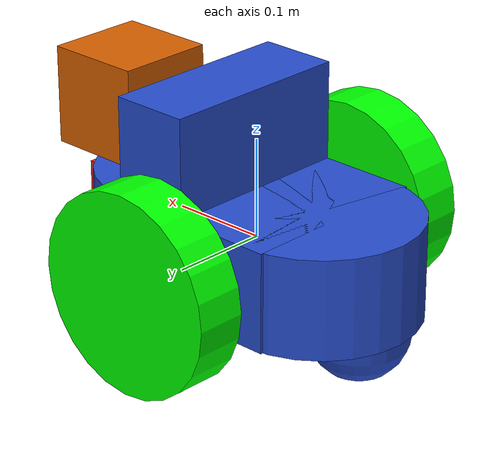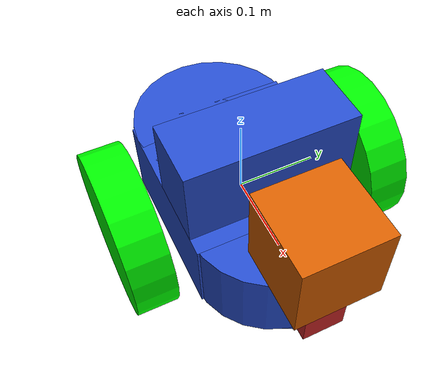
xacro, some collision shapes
<?xml version='1.0'?>

<robot name="new_robot" xmlns:xacro="http://www.ros.org/wiki/xacro">

  <xacro:include filename="$(find new_robot)/urdf/new_robot.gazebo" />

  <!-- Defining the colors used in this robot -->
  <material name="Black">
    <color rgba="0.0 0.0 0.0 1.0"/>
  </material>
  <material name="Red">
    <color rgba="0.8 0.0 0.0 1.0"/>
  </material>
  <material name="White">
    <color rgba="1.0 1.0 1.0 1.0"/>
  </material>
  <material name="Blue">
    <color rgba="0.0 0.0 0.8 1.0"/>
  </material>
  <material name="Green">
    <color rgba="0.0 1.0 0.0 1.0"/>
  </material>

  <link name="robot_footprint">
  </link>

  <joint name="robot_footprint_joint" type="fixed">
    <origin xyz="0 0 0" rpy="0 0 0" />
    <parent link="robot_footprint"/>
    <child link="chassis" />
  </joint>

  <link name='chassis'>
    <pose>0 0 0.1 0 0 0</pose>
    <inertial>
      <mass value="15.0"/>
      <origin xyz="0.0 0 0" rpy=" 0 0 0"/>
      <inertia
          ixx="0.1" ixy="0" ixz="0"
          iyy="0.1" iyz="0"
          izz="0.1"
      />
    </inertial>

    <collision name='collision'>
      <origin xyz="0 0 0" rpy=" 0 0 0"/>
      <geometry>
        <box size=".4 .2 .1"/>
      </geometry>
    </collision>

    <collision name='back_caster_collision'>
      <origin xyz="-0.15 0 -0.05" rpy=" 0 0 0"/>
      <geometry>
        <sphere radius="0.05"/>
      </geometry>
      <surface>
        <friction>
          <ode>
            <mu>0</mu>
            <mu2>0</mu2>
            <slip1>1.0</slip1>
            <slip2>1.0</slip2>
          </ode>
        </friction>
      </surface>
    </collision>

    <collision name='front_caster_collision'>
      <origin xyz="0.15 0 -0.05" rpy=" 0 0 0"/>
      <geometry>
        <sphere radius="0.05"/>
      </geometry>
      <surface>
        <friction>
          <ode>
            <mu>0</mu>
            <mu2>0</mu2>
            <slip1>1.0</slip1>
            <slip2>1.0</slip2>
          </ode>
        </friction>
      </surface>
    </collision>

   <visual>
      <origin rpy="0 0 0" xyz="0 0 0"/>
      <geometry>
        <box size=".2 .2 .1"/>
      </geometry>
    </visual>

    <visual name="box_visua">
      <origin rpy="0.0 0 0.0" xyz="0.04 0 0.1"/>
      <geometry>
        <box size=".08 .2 .1"/>
      </geometry>
    </visual>

    <visual name='front_part_visual'>
      <origin xyz="0.08 0 0.0" rpy=" 0 0 0"/>
      <geometry>
        <cylinder length="0.1" radius="0.1"/>
      </geometry>
    </visual>

    <visual name='front_caster_visual'>
      <origin xyz="0.13 0 -0.05" rpy=" 0 0 0"/>
      <geometry>
        <sphere radius="0.05"/>
      </geometry>
    </visual>

    <visual name='back_part_visual'>
      <origin xyz="-0.08 0 0.0" rpy=" 0 0 0"/>
      <geometry>
        <cylinder length="0.1" radius="0.1"/>
      </geometry>
    </visual>

    <visual name='back_caster_visual'>
      <origin xyz="-0.13 0 -0.05" rpy=" 0 0 0"/>
      <geometry>
        <sphere radius="0.05"/>
      </geometry>
    </visual>

  </link>

  <gazebo reference="chassis">
    <material>Gazebo/Blue</material>
  </gazebo>

  <link name='left_wheel'>
    <inertial>
      <mass value="5.0"/>
      <origin xyz="0.0 0 0" rpy=" 0 0 0"/>
      <inertia
          ixx="0.1" ixy="0" ixz="0"
          iyy="0.1" iyz="0"
          izz="0.1"
      />
    </inertial>
    <collision name='left_wheel_collision'>
      <origin xyz="0.0 0.0 0.0" rpy=" 0.0 1.5707 1.5707"/>
      <geometry>
        <cylinder radius="0.1" length="0.05"/>
      </geometry>
      <surface>
        <friction>
          <ode>
            <mu>0</mu>
            <mu2>0</mu2>
            <slip1>1.0</slip1>
            <slip2>1.0</slip2>
          </ode>
        </friction>
      </surface>
    </collision>

    <visual name='left_wheel_visual'>
      <origin xyz="0.0 0.0 0.0" rpy=" 0.0 1.5707 1.5707"/>
      <geometry>
        <cylinder radius="0.1" length="0.05"/>
      </geometry>
      <material name="Green"/>
    </visual>

  </link>

  <gazebo reference="left_wheel">
    <material>Gazebo/Green</material>
  </gazebo>

  <joint type="continuous" name="left_wheel_hinge">
    <origin xyz="0.0 0.15 0" rpy="0 0 0"/>
    <child link="left_wheel"/>
    <parent link="chassis"/>
    <axis xyz="0 1 0" rpy="0 0 0"/>
    <limit effort="10000" velocity="1000"/>
    <joint_properties damping="1.0" friction="1.0"/>
  </joint>

  <link name='right_wheel'>
    <inertial>
      <mass value="5.0"/>
      <origin xyz="0.0 0 0" rpy=" 0 0 0"/>
      <material name="green"/>
      <inertia
          ixx="0.1" ixy="0" ixz="0"
          iyy="0.1" iyz="0"
          izz="0.1"
      />
    </inertial>
    <collision name='right_wheel_collision'>
      <origin xyz="0.0 0.0 0.0" rpy=" 0.0 1.5707 1.5707"/>
      <geometry>
        <cylinder radius="0.1" length="0.05"/>
      </geometry>
      <surface>
        <friction>
          <ode>
            <mu>0</mu>
            <mu2>0</mu2>
            <slip1>1.0</slip1>
            <slip2>1.0</slip2>
          </ode>
        </friction>
      </surface>
    </collision>

    <visual name='right_wheel_visual'>
      <origin xyz="0.0 0.0 0.0" rpy=" 0.0 1.5707 1.5707"/>
      <geometry>
        <cylinder radius="0.1" length="0.05"/>
      </geometry>
      <material name="Green"/>
    </visual>

  </link>

  <gazebo reference="right_wheel">
    <material>Gazebo/Green</material>
  </gazebo>

  <joint type="continuous" name="right_wheel_hinge">
    <origin xyz="0.0 -0.15 0" rpy="0 0 0"/>
    <child link="right_wheel"/>
    <parent link="chassis"/>
    <axis xyz="0 1 0" rpy="0 0 0"/>
    <limit effort="10000" velocity="1000"/>
    <joint_properties damping="1.0" friction="1.0"/>
  </joint>

  <link name='camera'>
    <inertial>
      <mass value="0.1"/>
      <origin xyz="0.0 0 0" rpy=" 0 0 0"/>
      <inertia
          ixx="1e-6" ixy="0" ixz="0"
          iyy="1e-6" iyz="0"
          izz="1e-6"
      />
    </inertial>
    <collision name='camera_collision'>
      <origin xyz="0.0 0.0 0.0" rpy="0.0 0.0 0.0"/>
      <geometry>
        <box size="0.05 0.05 0.05"/>
      </geometry>
      <surface>
        <friction>
          <ode>
            <mu>0</mu>
            <mu2>0</mu2>
            <slip1>1.0</slip1>
            <slip2>1.0</slip2>
          </ode>
        </friction>
      </surface>
    </collision>

    <visual name='camera_visual'>
      <origin xyz="0.0 0.0 0.0" rpy="0.0 0.0 0.0"/>
      <geometry>
        <box size="0.05 0.05 0.05"/>
      </geometry>
    </visual>

  </link>

  <gazebo reference="camera">
    <material>Gazebo/Red</material>
  </gazebo>

  <joint type="continuous" name="camera_joint">
    <origin xyz="0.18 0.0 0" rpy="0 0 0"/>
    <child link="camera"/>
    <parent link="chassis"/>
    <axis xyz="0 1 0" rpy="0 0 0"/>
    <limit effort="10000" velocity="1000"/>
    <joint_properties damping="1.0" friction="1.0"/>
  </joint>

  <link name='hokuyo'>
    <inertial>
      <mass value="0.1"/>
      <origin xyz="0.0 0.0 0.0" rpy="0.0 0.0 0.0"/>
      <inertia
          ixx="1e-6" ixy="0" ixz="0"
          iyy="1e-6" iyz="0"
          izz="1e-6"
      />
    </inertial>
    <collision name='hokuyo_collision'>
      <origin xyz="0.0 0.0 0.0" rpy="0.0 0.0 0.0"/>
      <geometry>
        <box size="0.1 0.1 0.1"/>
      </geometry>
      <surface>
        <friction>
          <ode>
            <mu>0</mu>
            <mu2>0</mu2>
            <slip1>1.0</slip1>
            <slip2>1.0</slip2>
          </ode>
        </friction>
      </surface>
    </collision>

    <visual name='hokuyo_visual'>
      <origin xyz="0.0 0.0 0.0" rpy="0.0 0.0 0.0"/>
      <geometry>
        <mesh filename="package://new_robot/meshes/hokuyo.dae"/>
      </geometry>
    </visual>

  </link>

  <joint type="continuous" name="hokuyo_joint">
    <origin xyz="0.17 0.0 0.1" rpy="0 0 0"/>
    <child link="hokuyo"/>
    <parent link="chassis"/>
    <axis xyz="0.0 1.0 0.0" rpy="0 0 0"/>
    <limit effort="10000" velocity="1000"/>
    <joint_properties damping="1.0" friction="1.0"/>
  </joint>

</robot>
